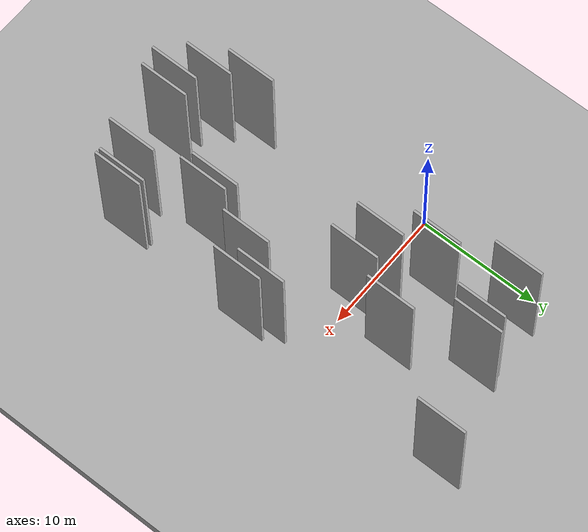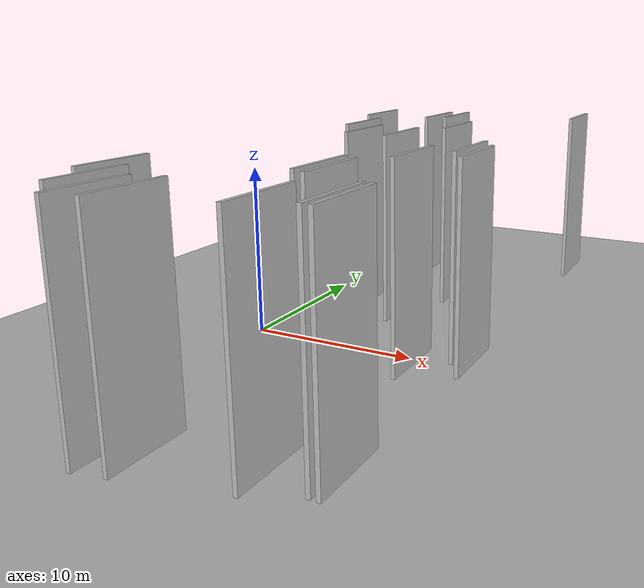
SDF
<?xml version="1.0" encoding="utf-8"?>

<sdf version="1.6">

   <world name="default">

      <gui fullscreen="0">

         <camera name="user_camera">

            <pose>-15 0 4.57585 0 0 0</pose>

            <view_controller>orbit</view_controller>

         </camera>

      </gui>

      <scene>

         <sky>

           <clouds>

             <speed>12</speed>

           </clouds>

         </sky>

         <ambient>0.4 0.4 0.4 1</ambient>

         <background>0.7 0.7 0.7 1</background>

         <shadows>1</shadows>

      </scene>

      <gravity>0 0 -9.8066</gravity>

      <magnetic_field>6e-06 2.3e-05 -4.2e-05</magnetic_field>

      <physics default="0" name="default_physics" type="ode">

         <ode>

            <solver>

               <type>quick</type>

               <iters>10</iters>

               <sor>1.0</sor>

               <use_dynamic_moi_rescaling>0</use_dynamic_moi_rescaling>

            </solver>

            <constraints>

               <cfm>0</cfm>

               <erp>0.2</erp>

               <contact_max_correcting_vel>100</contact_max_correcting_vel>

               <contact_surface_layer>0.001</contact_surface_layer>

            </constraints>

         </ode>

         <max_step_size>0.004</max_step_size>

         <real_time_factor>1</real_time_factor>

         <real_time_update_rate>250</real_time_update_rate>

      </physics>

      <light name="sun" type="directional">

         <cast_shadows>1</cast_shadows>

         <pose>0 0 10 0 0 0</pose>

         <diffuse>0.8 0.8 0.8 1</diffuse>

         <specular>0.2 0.2 0.2 1</specular>

         <attenuation>

            <range>1000</range>

            <constant>0.9</constant>

            <linear>0.01</linear>

            <quadratic>0.001</quadratic>

         </attenuation>

         <direction>-0.5 0.1 -0.9</direction>

      </light>

      <include>

         <name>ground_plane_1</name>

         <uri>model://HANNAS_ground_plane</uri>

         <pose>0 0 0  0 0 0</pose>

      </include>

      <include>

         <name>ground_plane_2</name>

         <uri>model://HANNAS_ground_plane</uri>

         <pose>100 0 0  0 0 0</pose>

      </include>

      <model name="HANNAS_wall_1">

         <static>1</static>

         <pose frame="">7.6689 -17.4527 2.5 0.000000 0.000000 1.570796</pose>

         <link name="link">

            <pose frame="">0 0 5.00 0 0 0</pose>

            <collision name="collision">

               <geometry>

                  <box>

                     <size>4.00 0.2 10.00</size>

                  </box>

               </geometry>

               <max_contacts>10</max_contacts>

               <surface>

                  <contact>

                     <ode/>

                  </contact>

                  <bounce/>

                  <friction>

                     <torsional>

                        <ode/>

                     </torsional>

                     <ode/>

                  </friction>

               </surface>

            </collision>

            <visual name="visual">

               <cast_shadows>0</cast_shadows>

               <geometry>

                  <box>

                     <size>4.00 0.2 10.00</size>

                  </box>

               </geometry>

               <material>

                  <script>

                     <uri>model://HANNAS_wall/materials/scripts</uri>

                     <uri>model://HANNAS_wall/materials/textures</uri>

                     <name>vrc/HANNAS_wall</name>

                  </script>

               </material>

            </visual>

            <self_collide>0</self_collide>

            <enable_wind>0</enable_wind>

            <kinematic>0</kinematic>

         </link>

      </model>

      <model name="HANNAS_wall_2">

         <static>1</static>

         <pose frame="">15.4829 13.1585 2.5 0.000000 0.000000 1.570796</pose>

         <link name="link">

            <pose frame="">0 0 5.00 0 0 0</pose>

            <collision name="collision">

               <geometry>

                  <box>

                     <size>4.00 0.2 10.00</size>

                  </box>

               </geometry>

               <max_contacts>10</max_contacts>

               <surface>

                  <contact>

                     <ode/>

                  </contact>

                  <bounce/>

                  <friction>

                     <torsional>

                        <ode/>

                     </torsional>

                     <ode/>

                  </friction>

               </surface>

            </collision>

            <visual name="visual">

               <cast_shadows>0</cast_shadows>

               <geometry>

                  <box>

                     <size>4.00 0.2 10.00</size>

                  </box>

               </geometry>

               <material>

                  <script>

                     <uri>model://HANNAS_wall/materials/scripts</uri>

                     <uri>model://HANNAS_wall/materials/textures</uri>

                     <name>vrc/HANNAS_wall</name>

                  </script>

               </material>

            </visual>

            <self_collide>0</self_collide>

            <enable_wind>0</enable_wind>

            <kinematic>0</kinematic>

         </link>

      </model>

      <model name="HANNAS_wall_3">

         <static>1</static>

         <pose frame="">8.2213 10.6185 2.5 0.000000 0.000000 1.570796</pose>

         <link name="link">

            <pose frame="">0 0 5.00 0 0 0</pose>

            <collision name="collision">

               <geometry>

                  <box>

                     <size>4.00 0.2 10.00</size>

                  </box>

               </geometry>

               <max_contacts>10</max_contacts>

               <surface>

                  <contact>

                     <ode/>

                  </contact>

                  <bounce/>

                  <friction>

                     <torsional>

                        <ode/>

                     </torsional>

                     <ode/>

                  </friction>

               </surface>

            </collision>

            <visual name="visual">

               <cast_shadows>0</cast_shadows>

               <geometry>

                  <box>

                     <size>4.00 0.2 10.00</size>

                  </box>

               </geometry>

               <material>

                  <script>

                     <uri>model://HANNAS_wall/materials/scripts</uri>

                     <uri>model://HANNAS_wall/materials/textures</uri>

                     <name>vrc/HANNAS_wall</name>

                  </script>

               </material>

            </visual>

            <self_collide>0</self_collide>

            <enable_wind>0</enable_wind>

            <kinematic>0</kinematic>

         </link>

      </model>

      <model name="HANNAS_wall_4">

         <static>1</static>

         <pose frame="">9.1236 0.7309 2.5 0.000000 0.000000 1.570796</pose>

         <link name="link">

            <pose frame="">0 0 5.00 0 0 0</pose>

            <collision name="collision">

               <geometry>

                  <box>

                     <size>4.00 0.2 10.00</size>

                  </box>

               </geometry>

               <max_contacts>10</max_contacts>

               <surface>

                  <contact>

                     <ode/>

                  </contact>

                  <bounce/>

                  <friction>

                     <torsional>

                        <ode/>

                     </torsional>

                     <ode/>

                  </friction>

               </surface>

            </collision>

            <visual name="visual">

               <cast_shadows>0</cast_shadows>

               <geometry>

                  <box>

                     <size>4.00 0.2 10.00</size>

                  </box>

               </geometry>

               <material>

                  <script>

                     <uri>model://HANNAS_wall/materials/scripts</uri>

                     <uri>model://HANNAS_wall/materials/textures</uri>

                     <name>vrc/HANNAS_wall</name>

                  </script>

               </material>

            </visual>

            <self_collide>0</self_collide>

            <enable_wind>0</enable_wind>

            <kinematic>0</kinematic>

         </link>

      </model>

      <model name="HANNAS_wall_5">

         <static>1</static>

         <pose frame="">10.8426 -10.1798 2.5 0.000000 0.000000 1.570796</pose>

         <link name="link">

            <pose frame="">0 0 5.00 0 0 0</pose>

            <collision name="collision">

               <geometry>

                  <box>

                     <size>4.00 0.2 10.00</size>

                  </box>

               </geometry>

               <max_contacts>10</max_contacts>

               <surface>

                  <contact>

                     <ode/>

                  </contact>

                  <bounce/>

                  <friction>

                     <torsional>

                        <ode/>

                     </torsional>

                     <ode/>

                  </friction>

               </surface>

            </collision>

            <visual name="visual">

               <cast_shadows>0</cast_shadows>

               <geometry>

                  <box>

                     <size>4.00 0.2 10.00</size>

                  </box>

               </geometry>

               <material>

                  <script>

                     <uri>model://HANNAS_wall/materials/scripts</uri>

                     <uri>model://HANNAS_wall/materials/textures</uri>

                     <name>vrc/HANNAS_wall</name>

                  </script>

               </material>

            </visual>

            <self_collide>0</self_collide>

            <enable_wind>0</enable_wind>

            <kinematic>0</kinematic>

         </link>

      </model>

      <model name="HANNAS_wall_6">

         <static>1</static>

         <pose frame="">4.7963 4.4193 2.5 0.000000 0.000000 1.570796</pose>

         <link name="link">

            <pose frame="">0 0 5.00 0 0 0</pose>

            <collision name="collision">

               <geometry>

                  <box>

                     <size>4.00 0.2 10.00</size>

                  </box>

               </geometry>

               <max_contacts>10</max_contacts>

               <surface>

                  <contact>

                     <ode/>

                  </contact>

                  <bounce/>

                  <friction>

                     <torsional>

                        <ode/>

                     </torsional>

                     <ode/>

                  </friction>

               </surface>

            </collision>

            <visual name="visual">

               <cast_shadows>0</cast_shadows>

               <geometry>

                  <box>

                     <size>4.00 0.2 10.00</size>

                  </box>

               </geometry>

               <material>

                  <script>

                     <uri>model://HANNAS_wall/materials/scripts</uri>

                     <uri>model://HANNAS_wall/materials/textures</uri>

                     <name>vrc/HANNAS_wall</name>

                  </script>

               </material>

            </visual>

            <self_collide>0</self_collide>

            <enable_wind>0</enable_wind>

            <kinematic>0</kinematic>

         </link>

      </model>

      <model name="HANNAS_wall_7">

         <static>1</static>

         <pose frame="">11.5899 -10.6027 2.5 0.000000 0.000000 1.570796</pose>

         <link name="link">

            <pose frame="">0 0 5.00 0 0 0</pose>

            <collision name="collision">

               <geometry>

                  <box>

                     <size>4.00 0.2 10.00</size>

                  </box>

               </geometry>

               <max_contacts>10</max_contacts>

               <surface>

                  <contact>

                     <ode/>

                  </contact>

                  <bounce/>

                  <friction>

                     <torsional>

                        <ode/>

                     </torsional>

                     <ode/>

                  </friction>

               </surface>

            </collision>

            <visual name="visual">

               <cast_shadows>0</cast_shadows>

               <geometry>

                  <box>

                     <size>4.00 0.2 10.00</size>

                  </box>

               </geometry>

               <material>

                  <script>

                     <uri>model://HANNAS_wall/materials/scripts</uri>

                     <uri>model://HANNAS_wall/materials/textures</uri>

                     <name>vrc/HANNAS_wall</name>

                  </script>

               </material>

            </visual>

            <self_collide>0</self_collide>

            <enable_wind>0</enable_wind>

            <kinematic>0</kinematic>

         </link>

      </model>

      <model name="HANNAS_wall_8">

         <static>1</static>

         <pose frame="">15.0065 -15.3878 2.5 0.000000 0.000000 1.570796</pose>

         <link name="link">

            <pose frame="">0 0 5.00 0 0 0</pose>

            <collision name="collision">

               <geometry>

                  <box>

                     <size>4.00 0.2 10.00</size>

                  </box>

               </geometry>

               <max_contacts>10</max_contacts>

               <surface>

                  <contact>

                     <ode/>

                  </contact>

                  <bounce/>

                  <friction>

                     <torsional>

                        <ode/>

                     </torsional>

                     <ode/>

                  </friction>

               </surface>

            </collision>

            <visual name="visual">

               <cast_shadows>0</cast_shadows>

               <geometry>

                  <box>

                     <size>4.00 0.2 10.00</size>

                  </box>

               </geometry>

               <material>

                  <script>

                     <uri>model://HANNAS_wall/materials/scripts</uri>

                     <uri>model://HANNAS_wall/materials/textures</uri>

                     <name>vrc/HANNAS_wall</name>

                  </script>

               </material>

            </visual>

            <self_collide>0</self_collide>

            <enable_wind>0</enable_wind>

            <kinematic>0</kinematic>

         </link>

      </model>

      <model name="HANNAS_wall_9">

         <static>1</static>

         <pose frame="">15.3552 -4.4436 2.5 0.000000 0.000000 1.570796</pose>

         <link name="link">

            <pose frame="">0 0 5.00 0 0 0</pose>

            <collision name="collision">

               <geometry>

                  <box>

                     <size>4.00 0.2 10.00</size>

                  </box>

               </geometry>

               <max_contacts>10</max_contacts>

               <surface>

                  <contact>

                     <ode/>

                  </contact>

                  <bounce/>

                  <friction>

                     <torsional>

                        <ode/>

                     </torsional>

                     <ode/>

                  </friction>

               </surface>

            </collision>

            <visual name="visual">

               <cast_shadows>0</cast_shadows>

               <geometry>

                  <box>

                     <size>4.00 0.2 10.00</size>

                  </box>

               </geometry>

               <material>

                  <script>

                     <uri>model://HANNAS_wall/materials/scripts</uri>

                     <uri>model://HANNAS_wall/materials/textures</uri>

                     <name>vrc/HANNAS_wall</name>

                  </script>

               </material>

            </visual>

            <self_collide>0</self_collide>

            <enable_wind>0</enable_wind>

            <kinematic>0</kinematic>

         </link>

      </model>

      <model name="HANNAS_wall_10">

         <static>1</static>

         <pose frame="">7.1975 10.1166 2.5 0.000000 0.000000 1.570796</pose>

         <link name="link">

            <pose frame="">0 0 5.00 0 0 0</pose>

            <collision name="collision">

               <geometry>

                  <box>

                     <size>4.00 0.2 10.00</size>

                  </box>

               </geometry>

               <max_contacts>10</max_contacts>

               <surface>

                  <contact>

                     <ode/>

                  </contact>

                  <bounce/>

                  <friction>

                     <torsional>

                        <ode/>

                     </torsional>

                     <ode/>

                  </friction>

               </surface>

            </collision>

            <visual name="visual">

               <cast_shadows>0</cast_shadows>

               <geometry>

                  <box>

                     <size>4.00 0.2 10.00</size>

                  </box>

               </geometry>

               <material>

                  <script>

                     <uri>model://HANNAS_wall/materials/scripts</uri>

                     <uri>model://HANNAS_wall/materials/textures</uri>

                     <name>vrc/HANNAS_wall</name>

                  </script>

               </material>

            </visual>

            <self_collide>0</self_collide>

            <enable_wind>0</enable_wind>

            <kinematic>0</kinematic>

         </link>

      </model>

      <model name="HANNAS_wall_11">

         <static>1</static>

         <pose frame="">6.7124 1.0219 2.5 0.000000 0.000000 1.570796</pose>

         <link name="link">

            <pose frame="">0 0 5.00 0 0 0</pose>

            <collision name="collision">

               <geometry>

                  <box>

                     <size>4.00 0.2 10.00</size>

                  </box>

               </geometry>

               <max_contacts>10</max_contacts>

               <surface>

                  <contact>

                     <ode/>

                  </contact>

                  <bounce/>

                  <friction>

                     <torsional>

                        <ode/>

                     </torsional>

                     <ode/>

                  </friction>

               </surface>

            </collision>

            <visual name="visual">

               <cast_shadows>0</cast_shadows>

               <geometry>

                  <box>

                     <size>4.00 0.2 10.00</size>

                  </box>

               </geometry>

               <material>

                  <script>

                     <uri>model://HANNAS_wall/materials/scripts</uri>

                     <uri>model://HANNAS_wall/materials/textures</uri>

                     <name>vrc/HANNAS_wall</name>

                  </script>

               </material>

            </visual>

            <self_collide>0</self_collide>

            <enable_wind>0</enable_wind>

            <kinematic>0</kinematic>

         </link>

      </model>

      <model name="HANNAS_wall_12">

         <static>1</static>

         <pose frame="">6.2093 -17.7446 2.5 0.000000 0.000000 1.570796</pose>

         <link name="link">

            <pose frame="">0 0 5.00 0 0 0</pose>

            <collision name="collision">

               <geometry>

                  <box>

                     <size>4.00 0.2 10.00</size>

                  </box>

               </geometry>

               <max_contacts>10</max_contacts>

               <surface>

                  <contact>

                     <ode/>

                  </contact>

                  <bounce/>

                  <friction>

                     <torsional>

                        <ode/>

                     </torsional>

                     <ode/>

                  </friction>

               </surface>

            </collision>

            <visual name="visual">

               <cast_shadows>0</cast_shadows>

               <geometry>

                  <box>

                     <size>4.00 0.2 10.00</size>

                  </box>

               </geometry>

               <material>

                  <script>

                     <uri>model://HANNAS_wall/materials/scripts</uri>

                     <uri>model://HANNAS_wall/materials/textures</uri>

                     <name>vrc/HANNAS_wall</name>

                  </script>

               </material>

            </visual>

            <self_collide>0</self_collide>

            <enable_wind>0</enable_wind>

            <kinematic>0</kinematic>

         </link>

      </model>

      <model name="HANNAS_wall_13">

         <static>1</static>

         <pose frame="">14.5889 -15.3674 2.5 0.000000 0.000000 1.570796</pose>

         <link name="link">

            <pose frame="">0 0 5.00 0 0 0</pose>

            <collision name="collision">

               <geometry>

                  <box>

                     <size>4.00 0.2 10.00</size>

                  </box>

               </geometry>

               <max_contacts>10</max_contacts>

               <surface>

                  <contact>

                     <ode/>

                  </contact>

                  <bounce/>

                  <friction>

                     <torsional>

                        <ode/>

                     </torsional>

                     <ode/>

                  </friction>

               </surface>

            </collision>

            <visual name="visual">

               <cast_shadows>0</cast_shadows>

               <geometry>

                  <box>

                     <size>4.00 0.2 10.00</size>

                  </box>

               </geometry>

               <material>

                  <script>

                     <uri>model://HANNAS_wall/materials/scripts</uri>

                     <uri>model://HANNAS_wall/materials/textures</uri>

                     <name>vrc/HANNAS_wall</name>

                  </script>

               </material>

            </visual>

            <self_collide>0</self_collide>

            <enable_wind>0</enable_wind>

            <kinematic>0</kinematic>

         </link>

      </model>

      <model name="HANNAS_wall_14">

         <static>1</static>

         <pose frame="">10.5869 4.9874 2.5 0.000000 0.000000 1.570796</pose>

         <link name="link">

            <pose frame="">0 0 5.00 0 0 0</pose>

            <collision name="collision">

               <geometry>

                  <box>

                     <size>4.00 0.2 10.00</size>

                  </box>

               </geometry>

               <max_contacts>10</max_contacts>

               <surface>

                  <contact>

                     <ode/>

                  </contact>

                  <bounce/>

                  <friction>

                     <torsional>

                        <ode/>

                     </torsional>

                     <ode/>

                  </friction>

               </surface>

            </collision>

            <visual name="visual">

               <cast_shadows>0</cast_shadows>

               <geometry>

                  <box>

                     <size>4.00 0.2 10.00</size>

                  </box>

               </geometry>

               <material>

                  <script>

                     <uri>model://HANNAS_wall/materials/scripts</uri>

                     <uri>model://HANNAS_wall/materials/textures</uri>

                     <name>vrc/HANNAS_wall</name>

                  </script>

               </material>

            </visual>

            <self_collide>0</self_collide>

            <enable_wind>0</enable_wind>

            <kinematic>0</kinematic>

         </link>

      </model>

      <model name="HANNAS_wall_15">

         <static>1</static>

         <pose frame="">3.0053 -13.4554 2.5 0.000000 0.000000 1.570796</pose>

         <link name="link">

            <pose frame="">0 0 5.00 0 0 0</pose>

            <collision name="collision">

               <geometry>

                  <box>

                     <size>4.00 0.2 10.00</size>

                  </box>

               </geometry>

               <max_contacts>10</max_contacts>

               <surface>

                  <contact>

                     <ode/>

                  </contact>

                  <bounce/>

                  <friction>

                     <torsional>

                        <ode/>

                     </torsional>

                     <ode/>

                  </friction>

               </surface>

            </collision>

            <visual name="visual">

               <cast_shadows>0</cast_shadows>

               <geometry>

                  <box>

                     <size>4.00 0.2 10.00</size>

                  </box>

               </geometry>

               <material>

                  <script>

                     <uri>model://HANNAS_wall/materials/scripts</uri>

                     <uri>model://HANNAS_wall/materials/textures</uri>

                     <name>vrc/HANNAS_wall</name>

                  </script>

               </material>

            </visual>

            <self_collide>0</self_collide>

            <enable_wind>0</enable_wind>

            <kinematic>0</kinematic>

         </link>

      </model>

      <model name="HANNAS_wall_16">

         <static>1</static>

         <pose frame="">3.1332 10.1201 2.5 0.000000 0.000000 1.570796</pose>

         <link name="link">

            <pose frame="">0 0 5.00 0 0 0</pose>

            <collision name="collision">

               <geometry>

                  <box>

                     <size>4.00 0.2 10.00</size>

                  </box>

               </geometry>

               <max_contacts>10</max_contacts>

               <surface>

                  <contact>

                     <ode/>

                  </contact>

                  <bounce/>

                  <friction>

                     <torsional>

                        <ode/>

                     </torsional>

                     <ode/>

                  </friction>

               </surface>

            </collision>

            <visual name="visual">

               <cast_shadows>0</cast_shadows>

               <geometry>

                  <box>

                     <size>4.00 0.2 10.00</size>

                  </box>

               </geometry>

               <material>

                  <script>

                     <uri>model://HANNAS_wall/materials/scripts</uri>

                     <uri>model://HANNAS_wall/materials/textures</uri>

                     <name>vrc/HANNAS_wall</name>

                  </script>

               </material>

            </visual>

            <self_collide>0</self_collide>

            <enable_wind>0</enable_wind>

            <kinematic>0</kinematic>

         </link>

      </model>

      <model name="HANNAS_wall_17">

         <static>1</static>

         <pose frame="">12.8519 -5.7464 2.5 0.000000 0.000000 1.570796</pose>

         <link name="link">

            <pose frame="">0 0 5.00 0 0 0</pose>

            <collision name="collision">

               <geometry>

                  <box>

                     <size>4.00 0.2 10.00</size>

                  </box>

               </geometry>

               <max_contacts>10</max_contacts>

               <surface>

                  <contact>

                     <ode/>

                  </contact>

                  <bounce/>

                  <friction>

                     <torsional>

                        <ode/>

                     </torsional>

                     <ode/>

                  </friction>

               </surface>

            </collision>

            <visual name="visual">

               <cast_shadows>0</cast_shadows>

               <geometry>

                  <box>

                     <size>4.00 0.2 10.00</size>

                  </box>

               </geometry>

               <material>

                  <script>

                     <uri>model://HANNAS_wall/materials/scripts</uri>

                     <uri>model://HANNAS_wall/materials/textures</uri>

                     <name>vrc/HANNAS_wall</name>

                  </script>

               </material>

            </visual>

            <self_collide>0</self_collide>

            <enable_wind>0</enable_wind>

            <kinematic>0</kinematic>

         </link>

      </model>

      <model name="HANNAS_wall_18">

         <static>1</static>

         <pose frame="">12.3858 -16.3602 2.5 0.000000 0.000000 1.570796</pose>

         <link name="link">

            <pose frame="">0 0 5.00 0 0 0</pose>

            <collision name="collision">

               <geometry>

                  <box>

                     <size>4.00 0.2 10.00</size>

                  </box>

               </geometry>

               <max_contacts>10</max_contacts>

               <surface>

                  <contact>

                     <ode/>

                  </contact>

                  <bounce/>

                  <friction>

                     <torsional>

                        <ode/>

                     </torsional>

                     <ode/>

                  </friction>

               </surface>

            </collision>

            <visual name="visual">

               <cast_shadows>0</cast_shadows>

               <geometry>

                  <box>

                     <size>4.00 0.2 10.00</size>

                  </box>

               </geometry>

               <material>

                  <script>

                     <uri>model://HANNAS_wall/materials/scripts</uri>

                     <uri>model://HANNAS_wall/materials/textures</uri>

                     <name>vrc/HANNAS_wall</name>

                  </script>

               </material>

            </visual>

            <self_collide>0</self_collide>

            <enable_wind>0</enable_wind>

            <kinematic>0</kinematic>

         </link>

      </model>

      <model name="HANNAS_wall_19">

         <static>1</static>

         <pose frame="">14.5172 -3.0712 2.5 0.000000 0.000000 1.570796</pose>

         <link name="link">

            <pose frame="">0 0 5.00 0 0 0</pose>

            <collision name="collision">

               <geometry>

                  <box>

                     <size>4.00 0.2 10.00</size>

                  </box>

               </geometry>

               <max_contacts>10</max_contacts>

               <surface>

                  <contact>

                     <ode/>

                  </contact>

                  <bounce/>

                  <friction>

                     <torsional>

                        <ode/>

                     </torsional>

                     <ode/>

                  </friction>

               </surface>

            </collision>

            <visual name="visual">

               <cast_shadows>0</cast_shadows>

               <geometry>

                  <box>

                     <size>4.00 0.2 10.00</size>

                  </box>

               </geometry>

               <material>

                  <script>

                     <uri>model://HANNAS_wall/materials/scripts</uri>

                     <uri>model://HANNAS_wall/materials/textures</uri>

                     <name>vrc/HANNAS_wall</name>

                  </script>

               </material>

            </visual>

            <self_collide>0</self_collide>

            <enable_wind>0</enable_wind>

            <kinematic>0</kinematic>

         </link>

      </model>

      <model name="HANNAS_wall_20">

         <static>1</static>

         <pose frame="">4.4222 -16.0964 2.5 0.000000 0.000000 1.570796</pose>

         <link name="link">

            <pose frame="">0 0 5.00 0 0 0</pose>

            <collision name="collision">

               <geometry>

                  <box>

                     <size>4.00 0.2 10.00</size>

                  </box>

               </geometry>

               <max_contacts>10</max_contacts>

               <surface>

                  <contact>

                     <ode/>

                  </contact>

                  <bounce/>

                  <friction>

                     <torsional>

                        <ode/>

                     </torsional>

                     <ode/>

                  </friction>

               </surface>

            </collision>

            <visual name="visual">

               <cast_shadows>0</cast_shadows>

               <geometry>

                  <box>

                     <size>4.00 0.2 10.00</size>

                  </box>

               </geometry>

               <material>

                  <script>

                     <uri>model://HANNAS_wall/materials/scripts</uri>

                     <uri>model://HANNAS_wall/materials/textures</uri>

                     <name>vrc/HANNAS_wall</name>

                  </script>

               </material>

            </visual>

            <self_collide>0</self_collide>

            <enable_wind>0</enable_wind>

            <kinematic>0</kinematic>

         </link>

      </model>

   </world>

</sdf>

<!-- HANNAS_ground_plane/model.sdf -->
<sdf version="1.4">
<model name="HANNAS_ground_plane">
  <static>true</static>
    <link name="link">
      <collision name="collision">
        <geometry>
          <plane>
            <normal>0 0 1</normal>
            <size>1000 1000</size>
          </plane>
        </geometry>
        <surface>
          <friction>
            <ode>
              <mu>100</mu>
              <mu2>50</mu2>
            </ode>
          </friction>
        </surface>
      </collision>
      <visual name="visual">
        <cast_shadows>false</cast_shadows>
        <geometry>
          <plane>
            <normal>0 0 1</normal>
            <size>1000 1000</size>
          </plane>
        </geometry>
        <material>
          <script>
            <uri>model://HANNAS_ground_plane/materials/scripts/HANNAS_ground_plane.material</uri>
	    <uri>model://HANNAS_ground_plane/materials/textures</uri>
            <name>HANNASGroundPlane/Image</name>
          </script>
        </material>
      </visual>
    </link>
  </model>
</sdf>
